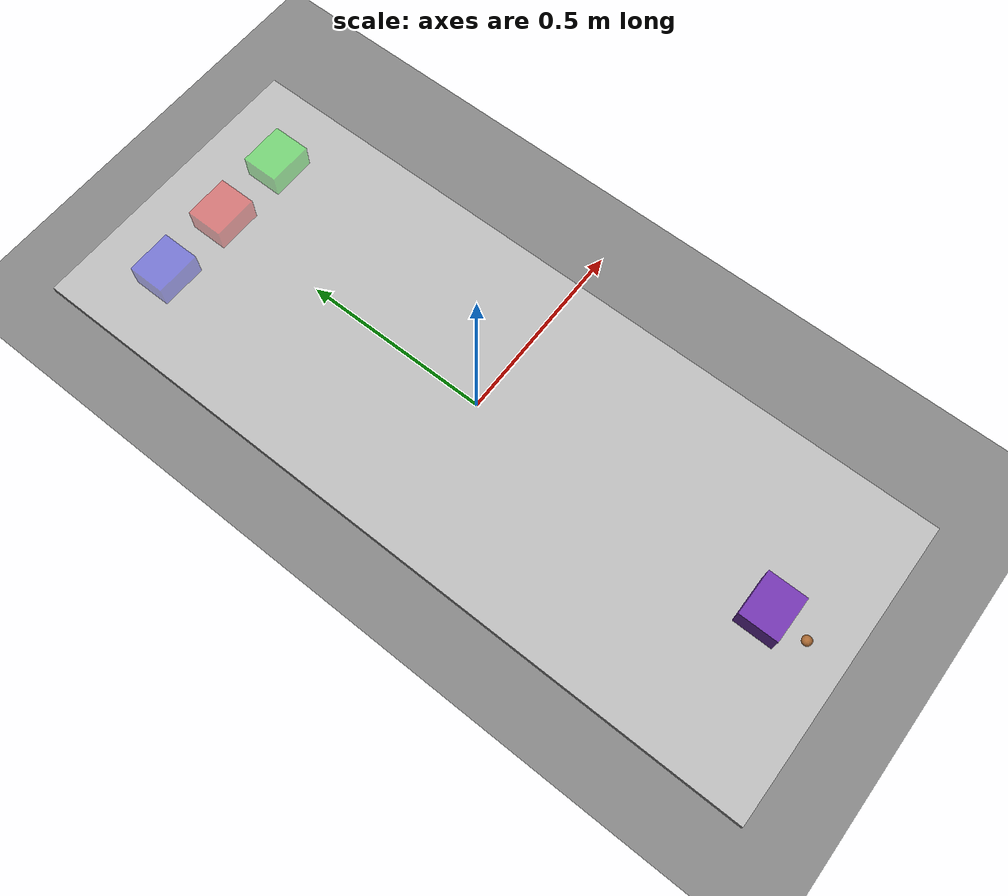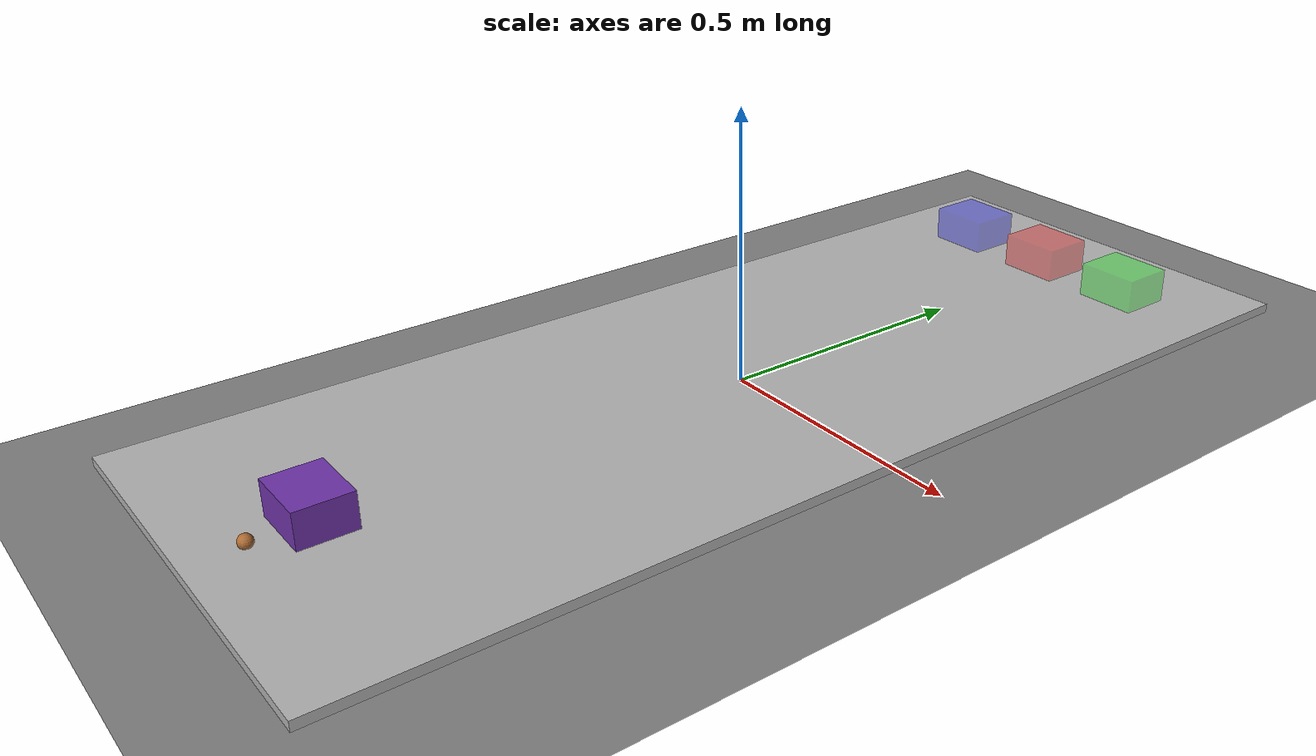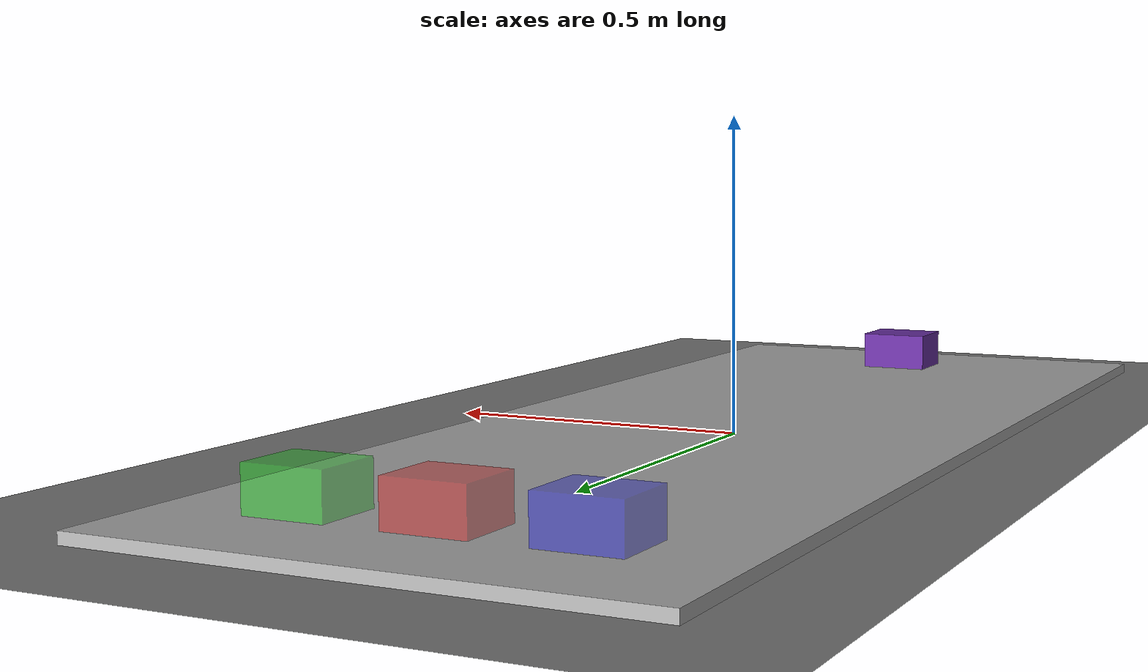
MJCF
<mujoco model="pushing_scene_cfg_match">

  <asset>
    <material name="mat_workspace"  rgba="0.70 0.70 0.70 1" shininess="0.05"/>
    <material name="mat_box"        rgba="0.43 0.20 0.66 1" shininess="0.2"/>
    <material name="mat_pusher"     rgba="0.66 0.41 0.20 1" shininess="0.2"/>
    <material name="mat_goal_g"     rgba="0 1 0 0.35"/>
    <material name="mat_goal_r"     rgba="1 0 0 0.35"/>
    <material name="mat_goal_b"     rgba="0 0 1 0.35"/>
    <material name="mat_ground"     rgba="0.5 0.5 0.5 1"/>
  </asset>

  <worldbody>
    <!-- light -->
    <light name="light" type="directional" dir="0 0 -1" diffuse="0.75 0.75 0.75" specular="0.2 0.2 0.2"/>

    <!-- Ground -->
    <geom name="ground" type="plane" size="5 5 0.1" material="mat_ground"/>

    <!-- Workspace -->
    <body name="workspace" pos="0 0 0.005" quat="1 0 0 0">
      <geom name="workspace_geom" type="box"
            size="0.4 1.0 0.01"
            material="mat_workspace"
            friction="0.5 0.005 0.0001"/>
    </body>

    <!-- Pusher -->
    <body name="pusher" pos="0 -0.9 0.0225" quat="1 0 0 0" gravcomp="1">
        <joint name="pusher_x" type="slide" axis="1 0 0" damping="1"/>
        <joint name="pusher_y" type="slide" axis="0 1 0" damping="1"/>
        <joint name="pusher_z" type="slide" axis="0 0 1" damping="1"/>
        <geom name="pusher_geom"
              type="sphere"
              size="0.0125"
              material="mat_pusher"
              friction="0.5 0.005 0.0001"
              mass="0.5"/>
    </body>

    <!-- Box -->
    <body name="box" pos="0 -0.8 0.045" quat="1 0 0 0">
      <freejoint/>
      <geom name="box_geom" type="box"
            size="0.06 0.05 0.035"
            material="mat_box"
            friction="0.0 0.001 0.0001"
            mass="0.5"/>
    </body>

    <!-- goal -->
    <body name="goal_r" pos="0 0.8 0.045" quat="1 0 0 0" mocap="true">
      <geom name="goal_r_geom"
            type="box"
            size="0.06 0.05 0.035"
            material="mat_goal_r"
            contype="0"
            conaffinity="0"/>
    </body>

    <body name="goal_g" pos="0.2 0.8 0.045" quat="1 0 0 0" mocap="true">
      <geom name="goal_g_geom"
            type="box"
            size="0.06 0.05 0.035"
            material="mat_goal_g"
            contype="0"
            conaffinity="0"/>
    </body>

    <body name="goal_b" pos="-0.2 0.8 0.045" quat="1 0 0 0" mocap="true">
      <geom name="goal_b_geom"
            type="box"
            size="0.06 0.05 0.035"
            material="mat_goal_b"
            contype="0"
            conaffinity="0"/>
    </body>

  </worldbody>

  <actuator>
    <velocity name="pusher_vx" joint="pusher_x" kv="30"/>
    <velocity name="pusher_vy" joint="pusher_y" kv="30"/>
    <velocity name="pusher_vz" joint="pusher_z" kv="30"/>
  </actuator>

</mujoco>
